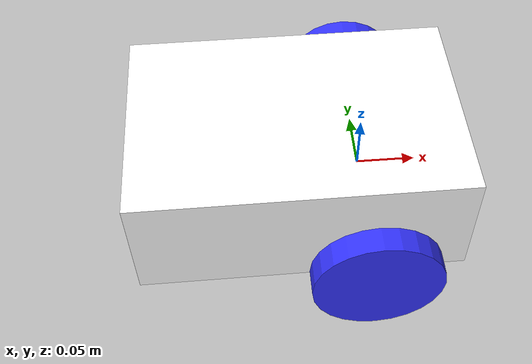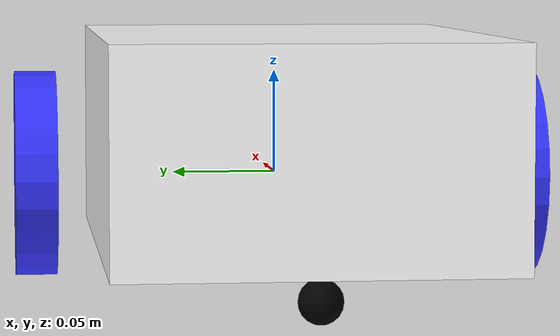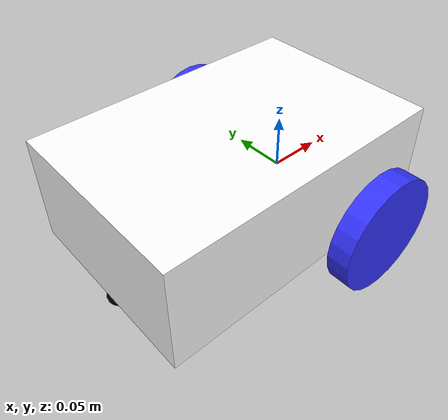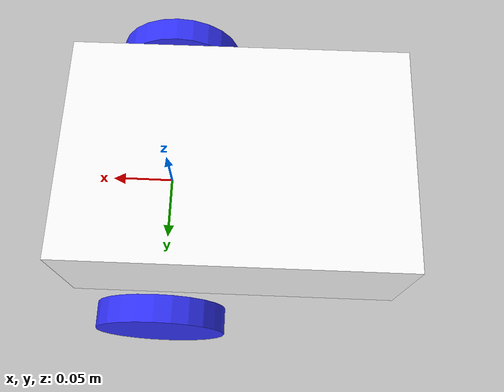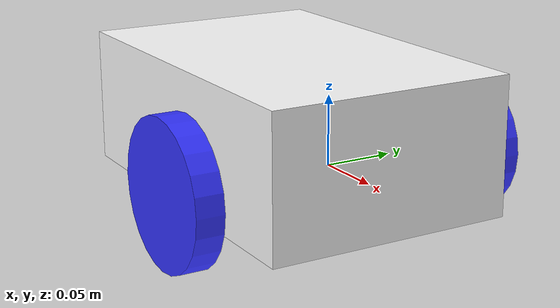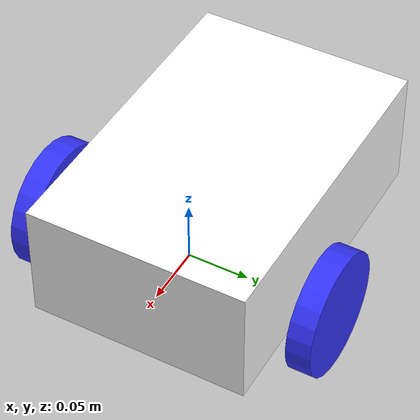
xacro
<?xml version="1.0"?>
<robot xmlns:xacro="http://www.ros.org/wiki/xacro">

    <xacro:include filename="inertial_macros.xacro"/>

    <material name="white">
        <color rgba="1 1 1 1" />
    </material>

    <material name="red">
        <color rgba="1 0.1 0.1 1" />
    </material>

    <material name="orange">
        <color rgba="1 0.3 0.1 1"/>
    </material>

    <material name="blue">
        <color rgba="0.2 0.2 1 1"/>
    </material>

    <material name="black">
        <color rgba="0 0 0 1"/>
    </material>

    <!-- BASE LINK -->

    <link name="base_link">

    </link>

        <!-- BASE_FOOTPRINT LINK -->

    <joint name="base_footprint_joint" type="fixed">
        <parent link="base_link"/>
        <child link="base_footprint"/>
        <origin xyz="0 0 0" rpy="0 0 0"/>
    </joint>

    <link name="base_footprint">
    </link>

    <!-- CHASSIS LINK -->

    <joint name="chassis_joint" type="fixed">
        <parent link="base_link"/>
        <child link="chassis"/>
        <origin xyz="-0.19 0 0"/>
    </joint>

    <link name="chassis">
        <visual>
            <origin xyz="0.135 0 0.02"/>
            <geometry>
                <box size="0.27 0.18 0.1"/>
            </geometry>
            <material name="white"/>
        </visual>
        <collision>
            <origin xyz="0.135 0 0.02"/>
            <geometry>
                <box size="0.27 0.18 0.1"/>
            </geometry>
        </collision>
        <xacro:inertial_box mass="2" x="0.27" y="0.18" z="0.1">
            <origin xyz="0.135 0.0 0.02" rpy="0 0 0"/>
        </xacro:inertial_box>
    </link>

    <gazebo reference="chassis">
        <material>
            Gazebo/White
        </material>
    </gazebo>

    <!-- LEFT WHEEL LINK-->
    <joint name="left_wheel_joint" type="continuous">
        <parent link="base_link"/>
        <child link="left_wheel"/>
        <origin xyz="0 0.1175 0" rpy="-${pi/2} 0.0 0.0"/>
        <axis xyz="0.0 0.0 1"/>
    </joint>

    <link name="left_wheel">
        <visual>
            <geometry>
                <cylinder radius="0.05" length="0.02"/>
            </geometry>
            <material name="blue"/>
        </visual>
        <collision>
            <geometry>
                <sphere radius="0.05"/>
            </geometry>
        </collision>
        <xacro:inertial_cylinder mass="0.2" length="0.02" radius="0.0525">
            <origin xyz="0.0 0.0 0.0" rpy="0.0 0.0 0.0"/>
        </xacro:inertial_cylinder>
    </link>

    <gazebo reference="left_wheel">
        <material>
            Gazebo/Blue
        </material>
    </gazebo>

    <!-- RIGHT WHEEL LINK-->

    <joint name="right_wheel_joint" type="continuous">
        <parent link="base_link"/>
        <child link="right_wheel"/>
        <origin xyz="0 -0.1175 0" rpy="${pi/2} 0.0 0.0"/>
        <axis xyz="0.0 0.0 -1"/>
    </joint>

    <link name="right_wheel">
        <visual>
            <geometry>
                <cylinder radius="0.0525" length="0.02"/>
            </geometry>
            <material name="blue"/>
        </visual>
        <collision>
            <geometry>
                <sphere radius="0.0525"/>
            </geometry>
        </collision>
        <xacro:inertial_cylinder mass="0.2" length="0.02" radius="0.0525">
            <origin xyz="0.0 0.0 0.0" rpy="0.0 0.0 0.0"/>
        </xacro:inertial_cylinder>
    </link>

    <gazebo reference="right_wheel">
        <material>
            Gazebo/Blue
        </material>
    </gazebo>

    <!--  CASTER WHEEL LINK-->

    <joint name="caster_wheel_joint" type="fixed">
        <parent link="chassis"/>
        <child link="caster_wheel"/>
        <origin xyz="0.01 0 -0.04"/>
    </joint>

    <link name="caster_wheel">
        <visual>
            <origin xyz="0.0 0.0 0.0" rpy="0.0 0.0 0.0"/>
            <geometry>
                <sphere radius="0.01"/>
            </geometry>
            <material name="black"/>
        </visual>
        <collision>
            <origin xyz="0.0 0.0 0.0" rpy="0.0 0.0 0.0"/>
            <geometry>
                <sphere radius="0.01"/>
            </geometry>
        </collision>
        <xacro:inertial_sphere mass="0.1" radius="0.01">
            <origin xyz="0.0 0.0 0.0" rpy="0.0 0.0 0.0"/>
        </xacro:inertial_sphere>
    </link>

    <gazebo reference="caster_wheel">
        <material>
            Gazebo/Black
        </material>
        <mu1 value="0.001"/>
        <mu2 value="0.001"/>
    </gazebo>

</robot>
